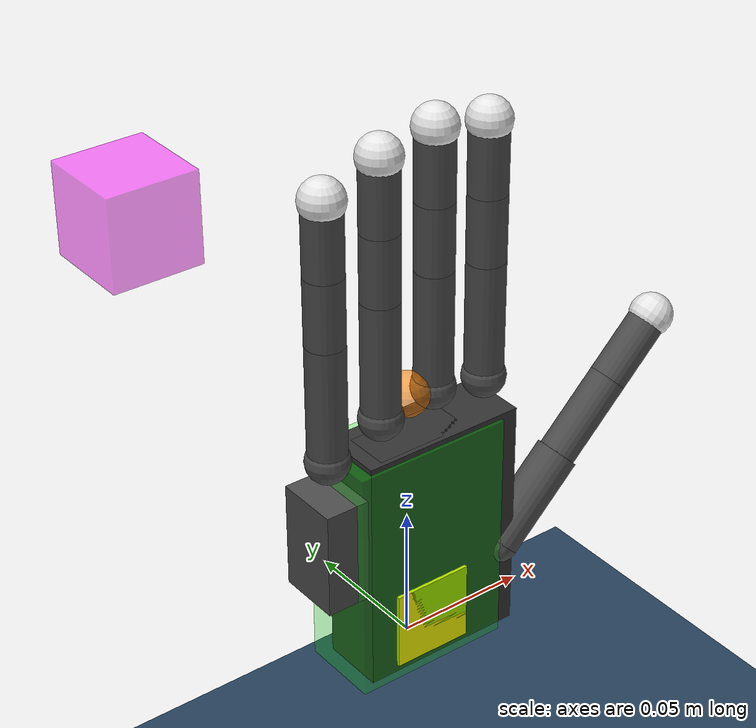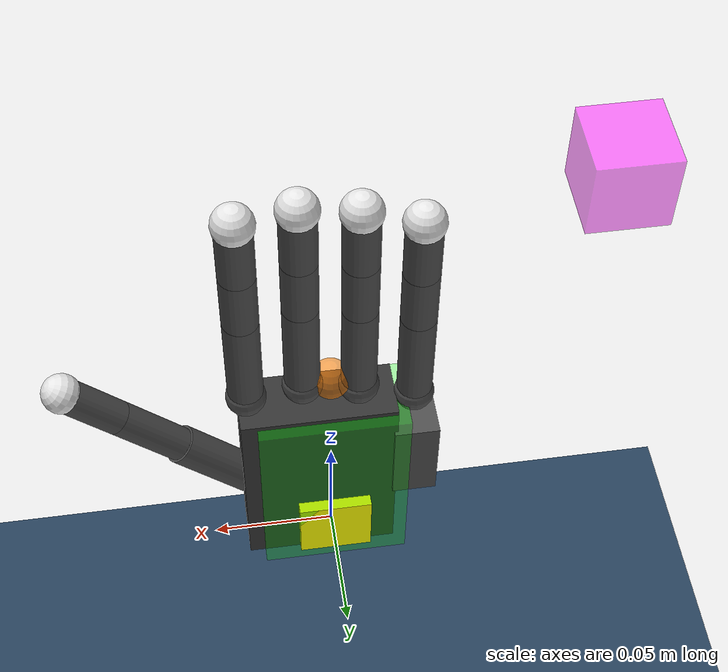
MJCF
<mujoco model="shadow_hand scene">
  <include file="shadow_hand_right.xml"/>

  <statistic center="0 0 0" extent="0.3"/>

  <visual>
    <rgba haze="0.15 0.25 0.35 1"/>
    <quality shadowsize="8192"/>
    <global azimuth="130" elevation="-40" offwidth="1280" offheight="960"/>
  </visual>

  <asset>
    <texture name='cube_surface' file="../assets/textures/iris_block.png" gridsize="3 4" gridlayout=".U..LFRB.D.."/>
    <material name="obj_material" texture="cube_surface" specular="5" shininess=".0"/>

    <texture type="2d" name="groundplane" builtin="checker" mark="edge" rgb1="0.2 0.3 0.4" rgb2="0.1 0.2 0.3"
      markrgb="0.8 0.8 0.8" width="300" height="300"/>
    <material name="groundplane" texture="groundplane" texuniform="true" texrepeat="5 5" reflectance="0."/>
  </asset>

  <worldbody>
    <light directional="true" ambient="0.2 0.2 0.2" diffuse="0.8 0.8 0.8"  castshadow="false" pos="0 1 4" dir="0 0 -1" name="light0"/>
    <camera name="demo-cam" pos="-0.003 -0.393 0.317" xyaxes="1.000 -0.000 0.000 0.000 0.462 0.887"/>

    <geom name="floor" pos="0 0 -0.1" size="0 0 0.05" type="plane" material="groundplane"/>

    <!-- Cube object (not the target, just in the scene) -->
    <body name="obj" pos="0.0 0.0 0.015">
        <freejoint name="cube_table"/>
        <geom name="obj" type="box" mass="0.1" material="obj_material" size="0.015 0.015 0.015"
              quat="1 0 0 0" friction="0.5" rgba="1.0 1.0 0 0.99"
              />
    </body>

    <!-- Target cube visualization (optional, kept for consistency) -->
    <body name="goal" pos="-0.1 -0.00 0.2">
        <geom name="goal_geom" size="0.015 0.015 0.015" material="obj_material" type="box" conaffinity="0" contype="0"
        pos="0 0 0"  rgba="1 0 1 0.5"/>
    </body>

    <!-- Target palm pose visualization -->
    <body name="target_palm" pos="0.0 0.0 0.0" quat="1 0 0 0">
        <!-- Semi-transparent box representing target palm -->
        <geom name="target_palm_box" type="box" size="0.03 0.015 0.045" pos="0 0 0.04"
              conaffinity="0" contype="0" rgba="0 1 0 0.3"/>
        <!-- Coordinate frame axes for target palm orientation -->
        <geom name="target_palm_x" type="cylinder" size="0.001" fromto="0 0 0 0.03 0 0"
              conaffinity="0" contype="0" rgba="1 0 0 0.7"/>
        <geom name="target_palm_y" type="cylinder" size="0.001" fromto="0 0 0 0 0.03 0"
              conaffinity="0" contype="0" rgba="0 1 0 0.7"/>
        <geom name="target_palm_z" type="cylinder" size="0.001" fromto="0 0 0 0 0 0.03"
              conaffinity="0" contype="0" rgba="0 0 1 0.7"/>
    </body>

    <!-- Target fingertip positions (5 spheres for Shadow hand) -->
    <body name="target_fftip" pos="0.0 0.0 0.1">
        <geom name="target_fftip_geom" type="sphere" size="0.008"
              conaffinity="0" contype="0" rgba="1 0.5 0 0.6"/>
    </body>
    <body name="target_mftip" pos="0.0 0.0 0.1">
        <geom name="target_mftip_geom" type="sphere" size="0.008"
              conaffinity="0" contype="0" rgba="1 0.5 0 0.6"/>
    </body>
    <body name="target_rftip" pos="0.0 0.0 0.1">
        <geom name="target_rftip_geom" type="sphere" size="0.008"
              conaffinity="0" contype="0" rgba="1 0.5 0 0.6"/>
    </body>
    <body name="target_lftip" pos="0.0 0.0 0.1">
        <geom name="target_lftip_geom" type="sphere" size="0.008"
              conaffinity="0" contype="0" rgba="1 0.5 0 0.6"/>
    </body>
    <body name="target_thtip" pos="0.0 0.0 0.1">
        <geom name="target_thtip_geom" type="sphere" size="0.008"
              conaffinity="0" contype="0" rgba="1 0.5 0 0.6"/>
    </body>
  </worldbody>
</mujoco>

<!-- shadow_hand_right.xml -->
<mujoco model="shadow_right">
  <compiler angle="radian" autolimits="true" meshdir="../assets/shadow_hand/meshes"/>

  <option cone="elliptic" impratio="10"/>

  <default>
    <default class="shadow_right">
      <joint damping="0.1"/>
      <position kp="1"/>
      <geom density="800"/>

      <default class="visual">
        <geom type="mesh" contype="0" conaffinity="0" group="2" rgba="0.9 0.9 0.9 1"/>
      </default>

      <default class="collision">
        <geom group="3" rgba="0.5 0.5 0.5 0.5"/>
      </default>

      <!-- Finger joint classes -->
      <default class="knuckle_joint">
        <joint axis="0 -1 0" range="-0.349 0.349"/>
        <position ctrlrange="-0.349 0.349"/>
      </default>
      <default class="proximal_joint">
        <joint axis="1 0 0" range="-0.262 1.571"/>
        <position ctrlrange="-0.262 1.571"/>
      </default>
      <default class="middle_joint">
        <joint axis="1 0 0" range="0 1.571"/>
        <position ctrlrange="0 1.571"/>
      </default>
      <default class="distal_joint">
        <joint axis="1 0 0" range="0 1.571"/>
        <position ctrlrange="0 1.571"/>
      </default>

      <!-- Little finger classes -->
      <default class="lf_metacarpal_joint">
        <joint axis="1 0 0" range="0 0.785"/>
        <position ctrlrange="0 0.785"/>
      </default>

      <!-- Thumb joint classes -->
      <default class="thumb_base1">
        <joint axis="0 0 -1" range="-1.047 1.047"/>
        <position ctrlrange="-1.047 1.047"/>
      </default>
      <default class="thumb_base2">
        <joint axis="0 1 0" range="0 1.222"/>
        <position ctrlrange="0 1.222"/>
      </default>
      <default class="thumb_mid1">
        <joint axis="0 1 0" range="-0.209 0.209"/>
        <position ctrlrange="-0.209 0.209"/>
      </default>
      <default class="thumb_mid2">
        <joint axis="1 0 0" range="-0.698 0.698"/>
        <position ctrlrange="-0.698 0.698"/>
      </default>
      <default class="thumb_distal">
        <joint axis="1 0 0" range="-0.262 1.571"/>
        <position ctrlrange="-0.262 1.571"/>
      </default>
    </default>
  </default>

  <asset>
    <material name="palm_mat" rgba="0.2 0.2 0.2 1"/>
    <material name="link_mat" rgba="0.3 0.3 0.3 1"/>
    <material name="tip_mat" rgba="0.9 0.9 0.9 1"/>
  </asset>

  <worldbody>
    <body name="palm" childclass="shadow_right">
      <!-- Palm translation joints -->
      <joint name="palm_tx" type="slide" axis="1 0 0" damping="10" range="-0.3 0.3"/>
      <joint name="palm_ty" type="slide" axis="0 1 0" damping="10" range="-0.3 0.3"/>
      <joint name="palm_tz" type="slide" axis="0 0 1" damping="10" range="-0.1 0.5"/>
      <!-- Palm rotation joints -->
      <joint name="palm_rx" type="hinge" axis="1 0 0" damping="10"/>
      <joint name="palm_ry" type="hinge" axis="0 1 0" damping="10"/>
      <joint name="palm_rz" type="hinge" axis="0 0 1" damping="10"/>

      <!-- Palm collision geometry -->
      <geom name="palm" type="box" size="0.031 0.012 0.045" pos="0.0055 -0.00175 0.042"
            friction="0.5" material="palm_mat"/>
      <geom type="box" size="0.018 0.0085 0.045" pos="-0.002 -0.0035 0.042"
            friction="0.5" material="palm_mat"/>

      <!-- First Finger (Index) -->
      <body name="ff_knuckle" pos="0.033 0 0.095">
        <joint name="ffj3" class="knuckle_joint"/>
        <geom name="ff_knuckle" type="sphere" size="0.008" material="link_mat"/>
        <body name="ff_proximal" pos="0 0 0">
          <joint name="ffj2" class="proximal_joint"/>
          <geom name="ff_proximal" type="cylinder" size="0.007 0.0225" pos="0 0 0.0225" material="link_mat"/>
          <body name="ff_middle" pos="0 0 0.045">
            <joint name="ffj1" class="middle_joint"/>
            <geom name="ff_middle" type="cylinder" size="0.007 0.0125" pos="0 0 0.0125" material="link_mat"/>
            <body name="ff_distal" pos="0 0 0.025">
              <joint name="ffj0" class="distal_joint"/>
              <geom name="ff_distal" type="cylinder" size="0.007 0.013" pos="0 0 0.013" material="link_mat"/>
              <body name="ff_tip" pos="0 0 0.026">
                <geom name="fingertip0" type="sphere" size="0.008" material="tip_mat"/>
                <site rgba="1 0 0 1" size="0.001" pos="0 0 0" name="ftp_0"/>
              </body>
            </body>
          </body>
        </body>
      </body>

      <!-- Middle Finger -->
      <body name="mf_knuckle" pos="0.011 0 0.099">
        <joint name="mfj3" class="knuckle_joint"/>
        <geom name="mf_knuckle" type="sphere" size="0.008" material="link_mat"/>
        <body name="mf_proximal" pos="0 0 0">
          <joint name="mfj2" class="proximal_joint"/>
          <geom name="mf_proximal" type="cylinder" size="0.007 0.0225" pos="0 0 0.0225" material="link_mat"/>
          <body name="mf_middle" pos="0 0 0.045">
            <joint name="mfj1" class="middle_joint"/>
            <geom name="mf_middle" type="cylinder" size="0.007 0.0125" pos="0 0 0.0125" material="link_mat"/>
            <body name="mf_distal" pos="0 0 0.025">
              <joint name="mfj0" class="distal_joint"/>
              <geom name="mf_distal" type="cylinder" size="0.007 0.013" pos="0 0 0.013" material="link_mat"/>
              <body name="mf_tip" pos="0 0 0.026">
                <geom name="fingertip1" type="sphere" size="0.008" material="tip_mat"/>
                <site rgba="1 0 0 1" size="0.001" pos="0 0 0" name="ftp_1"/>
              </body>
            </body>
          </body>
        </body>
      </body>

      <!-- Ring Finger -->
      <body name="rf_knuckle" pos="-0.011 0 0.095">
        <joint name="rfj3" class="knuckle_joint" axis="0 1 0"/>
        <geom name="rf_knuckle" type="sphere" size="0.008" material="link_mat"/>
        <body name="rf_proximal" pos="0 0 0">
          <joint name="rfj2" class="proximal_joint"/>
          <geom name="rf_proximal" type="cylinder" size="0.007 0.0225" pos="0 0 0.0225" material="link_mat"/>
          <body name="rf_middle" pos="0 0 0.045">
            <joint name="rfj1" class="middle_joint"/>
            <geom name="rf_middle" type="cylinder" size="0.007 0.0125" pos="0 0 0.0125" material="link_mat"/>
            <body name="rf_distal" pos="0 0 0.025">
              <joint name="rfj0" class="distal_joint"/>
              <geom name="rf_distal" type="cylinder" size="0.007 0.013" pos="0 0 0.013" material="link_mat"/>
              <body name="rf_tip" pos="0 0 0.026">
                <geom name="fingertip2" type="sphere" size="0.008" material="tip_mat"/>
                <site rgba="1 0 0 1" size="0.001" pos="0 0 0" name="ftp_2"/>
              </body>
            </body>
          </body>
        </body>
      </body>

      <!-- Little Finger -->
      <!-- URDF: palm->metacarpal at xyz="-0.033 0 0.02071" rpy="0 -0.9599 0" (55deg pitch down) -->
      <!-- Metacarpal collision in URDF: xyz="0.026986375 0 0.019" rpy="0 0.9599 0" size="0.018 0.024 0.040" -->
      <body name="lf_metacarpal" pos="-0.033 0 0.02071" quat="0.88701801 0 -0.46173483 0">
        <joint name="lfj4" class="lf_metacarpal_joint"/>
        <!-- Metacarpal geometry: positioned and rotated in metacarpal frame -->
        <geom name="lf_metacarpal" type="box" size="0.009 0.012 0.02" pos="0.026986375 0 0.019"
              quat="0.88701801 0 0.46173483 0" material="link_mat"/>
        <!-- knuckle position in metacarpal's rotated frame -->
        <body name="lf_knuckle" pos="0.05397275 0 0.03779463" quat="0.88701801 0 0.46173483 0">
          <joint name="lfj3" class="knuckle_joint" axis="0 1 0"/>
          <geom name="lf_knuckle" type="sphere" size="0.008" material="link_mat"/>
          <body name="lf_proximal" pos="0 0 0">
            <joint name="lfj2" class="proximal_joint"/>
            <geom name="lf_proximal" type="cylinder" size="0.007 0.0225" pos="0 0 0.0225" material="link_mat"/>
            <body name="lf_middle" pos="0 0 0.045">
              <joint name="lfj1" class="middle_joint"/>
              <geom name="lf_middle" type="cylinder" size="0.007 0.0125" pos="0 0 0.0125" material="link_mat"/>
              <body name="lf_distal" pos="0 0 0.025">
                <joint name="lfj0" class="distal_joint"/>
                <geom name="lf_distal" type="cylinder" size="0.007 0.013" pos="0 0 0.013" material="link_mat"/>
                <body name="lf_tip" pos="0 0 0.026">
                  <geom name="fingertip3" type="sphere" size="0.008" material="tip_mat"/>
                  <site rgba="1 0 0 1" size="0.001" pos="0 0 0" name="ftp_3"/>
                </body>
              </body>
            </body>
          </body>
        </body>
      </body>

      <!-- Thumb (5 joints) -->
      <!-- URDF: palm->thbase at xyz="0.034 -0.00858 0.029" rpy="-0.785398163397 0 -1.57079632679" -->
      <!-- That's rpy = [-45deg, 0deg, -90deg] -->
      <body name="th_base" pos="0.034 -0.00858 0.029" quat="0.65328148 -0.27059805 0.27059805 -0.65328148">
        <joint name="thj4" class="thumb_base1"/>
        <geom name="th_base" type="sphere" size="0.008" material="link_mat"/>
        <!-- THJ4 (thj4): axis="0 1 0" at origin="0 0 0" -->
        <body name="th_proximal" pos="0 0 0">
          <joint name="thj3" class="thumb_base2"/>
          <geom name="th_proximal" type="cylinder" size="0.008 0.019" pos="0 0 0.019" material="link_mat"/>
          <!-- THJ3 (thj2): axis="0 1 0" at origin="0 0 0.038" -->
          <body name="th_hub" pos="0 0 0.038">
            <joint name="thj2" class="thumb_mid1"/>
            <geom name="th_hub" type="sphere" size="0.007" material="link_mat"/>
            <!-- THJ2 (thj1): axis="1 0 0" at origin="0 0 0" -->
            <body name="th_middle" pos="0 0 0">
              <joint name="thj1" class="thumb_mid2"/>
              <geom name="th_middle" type="cylinder" size="0.007 0.016" pos="0 0 0.016" material="link_mat"/>
              <!-- THJ1 (thj0): axis="1 0 0" at origin="0 0 0.032" -->
              <body name="th_distal" pos="0 0 0.032">
                <joint name="thj0" class="thumb_distal"/>
                <geom name="th_distal" type="cylinder" size="0.007 0.01375" pos="0 0 0.01375" material="link_mat"/>
                <!-- Tip at origin="0 0 0.0275" -->
                <body name="th_tip" pos="0 0 0.0275">
                  <geom name="fingertip4" type="sphere" size="0.008" material="tip_mat"/>
                  <site rgba="1 0 0 1" size="0.001" pos="0 0 0" name="ftp_4"/>
                </body>
              </body>
            </body>
          </body>
        </body>
      </body>

    </body>
  </worldbody>

  <contact>
    <exclude body1="palm" body2="ff_knuckle"/>
    <exclude body1="palm" body2="mf_knuckle"/>
    <exclude body1="palm" body2="rf_knuckle"/>
    <exclude body1="palm" body2="lf_metacarpal"/>
    <exclude body1="palm" body2="th_base"/>
    <exclude body1="palm" body2="th_proximal"/>
  </contact>

  <actuator>
    <!-- Palm position actuators -->
    <position name="palm_x" joint="palm_tx" ctrlrange="-0.3 0.3" kp="10000"/>
    <position name="palm_y" joint="palm_ty" ctrlrange="-0.3 0.3" kp="10000"/>
    <position name="palm_z" joint="palm_tz" ctrlrange="-0.1 0.5" kp="10000"/>
    <!-- Palm rotation actuators -->
    <position name="palm_rotx" joint="palm_rx" kp="100"/>
    <position name="palm_roty" joint="palm_ry" kp="100"/>
    <position name="palm_rotz" joint="palm_rz" kp="100"/>

    <!-- First finger actuators (4 joints) -->
    <position name="ffa0" joint="ffj3" class="knuckle_joint" kp="1"/>
    <position name="ffa1" joint="ffj2" class="proximal_joint" kp="1"/>
    <position name="ffa2" joint="ffj1" class="middle_joint" kp="1"/>
    <position name="ffa3" joint="ffj0" class="distal_joint" kp="1"/>

    <!-- Middle finger actuators (4 joints) -->
    <position name="mfa0" joint="mfj3" class="knuckle_joint" kp="1"/>
    <position name="mfa1" joint="mfj2" class="proximal_joint" kp="1"/>
    <position name="mfa2" joint="mfj1" class="middle_joint" kp="1"/>
    <position name="mfa3" joint="mfj0" class="distal_joint" kp="1"/>

    <!-- Ring finger actuators (4 joints) -->
    <position name="rfa0" joint="rfj3" class="knuckle_joint" kp="1"/>
    <position name="rfa1" joint="rfj2" class="proximal_joint" kp="1"/>
    <position name="rfa2" joint="rfj1" class="middle_joint" kp="1"/>
    <position name="rfa3" joint="rfj0" class="distal_joint" kp="1"/>

    <!-- Little finger actuators (5 joints) -->
    <position name="lfa0" joint="lfj4" class="lf_metacarpal_joint" kp="1"/>
    <position name="lfa1" joint="lfj3" class="knuckle_joint" kp="1"/>
    <position name="lfa2" joint="lfj2" class="proximal_joint" kp="1"/>
    <position name="lfa3" joint="lfj1" class="middle_joint" kp="1"/>
    <position name="lfa4" joint="lfj0" class="distal_joint" kp="1"/>

    <!-- Thumb actuators (5 joints) -->
    <position name="tha0" joint="thj4" class="thumb_base1" kp="1"/>
    <position name="tha1" joint="thj3" class="thumb_base2" kp="1"/>
    <position name="tha2" joint="thj2" class="thumb_mid1" kp="1"/>
    <position name="tha3" joint="thj1" class="thumb_mid2" kp="1"/>
    <position name="tha4" joint="thj0" class="thumb_distal" kp="1"/>
  </actuator>

</mujoco>
